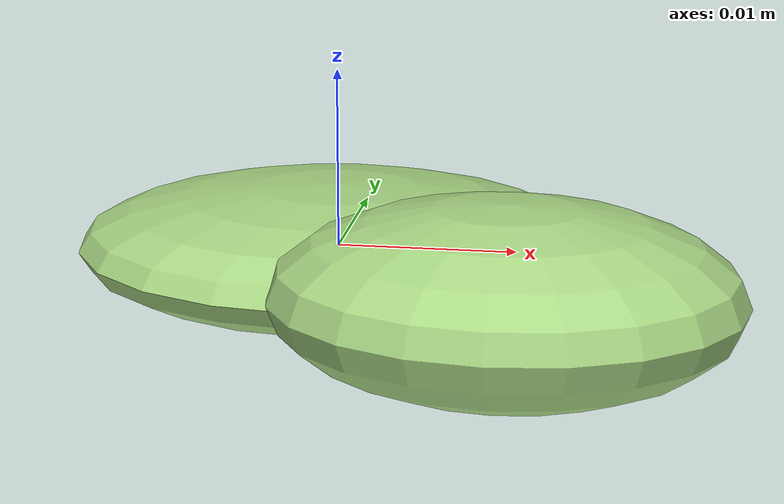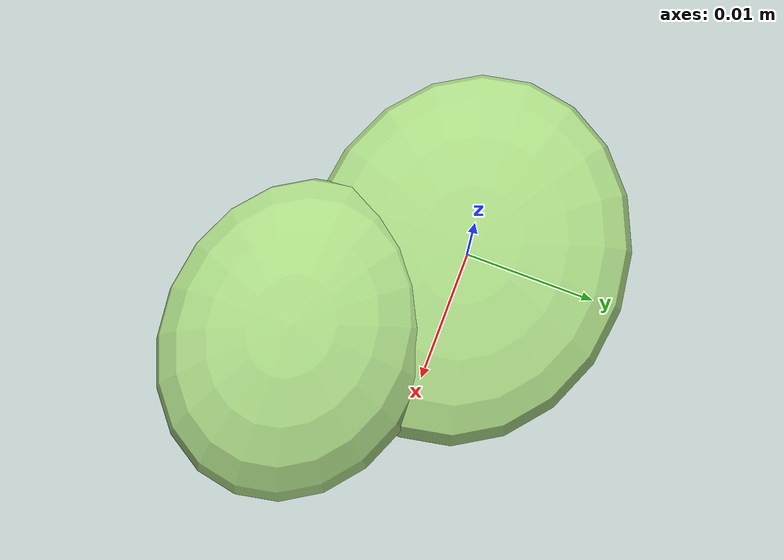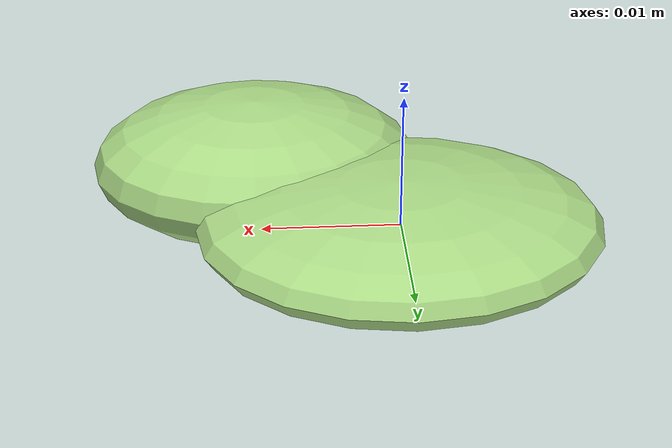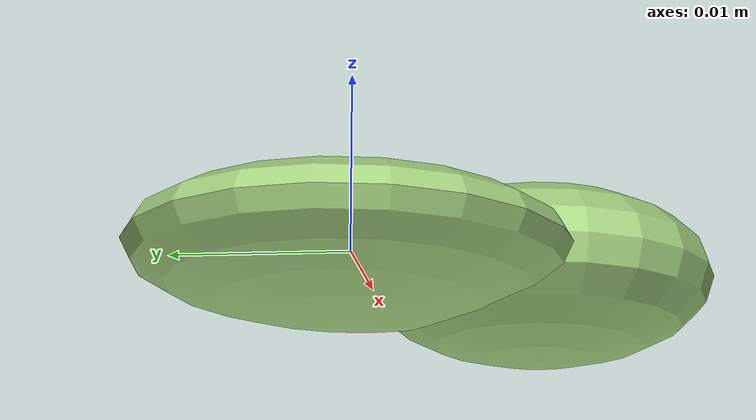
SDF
<?xml version="1.0" ?>
<!-- |    This document was autogenerated by xmacro from data/veggie_template/veggie_base.sdf.xacro  | -->
<!-- |    EDITING THIS FILE BY HAND IS NOT RECOMMENDED                                               | -->
<sdf version="1.8">
	<!-- Parameters -->
	<!-- Base -->
	<!-- Joint 0 -->
	<!-- Link 1 -->
	<!-- Joint 1 -->
	<!-- Link 2 -->
	<!-- Primitives -->
	<!-- All dimensions are half -->
	<!-- Object -->
	<model name="veggie">
		<!-- link0 -->
		<link name="link0">
			<inertial>
				<mass>0.002646832147553751</mass>
				<inertia>
					<ixx>8.62257933218305e-08</ixx>
					<ixy>0</ixy>
					<ixz>0</ixz>
					<iyy>1.2045411150479228e-07</iyy>
					<iyz>0</iyz>
					<izz>1.9363462059382036e-07</izz>
				</inertia>
			</inertial>
			<visual name="link0_visual">
				<pose>0 0 0 0 0 0</pose>
				<geometry>
					<ellipsoid>
						<radii>0.01467045727939896 0.012270423380210217 0.0035102138620547617</radii>
					</ellipsoid>
				</geometry>
				<material>
					<ambient>0.659 0.839 0.514 1</ambient>
					<diffuse>0.659 0.839 0.514 1</diffuse>
					<specular>0 0 0 0</specular>
					<emissive>0 0 0 1</emissive>
				</material>
			</visual>
			<collision name="link0_collision">
				<pose>0 0 0 0 0 0 </pose>
				<geometry>
					<ellipsoid>
						<radii>0.01467045727939896 0.012270423380210217 0.0035102138620547617</radii>
					</ellipsoid>
				</geometry>
			</collision>
		</link>
		<!-- link1 -->
		<joint name="joint0" type="fixed">
			<pose relative_to="link0">0.010351890068361558 -0.009730835023320148 0.0004914515095950654 0.0 0.0 0.0</pose>
			<parent>link0</parent>
			<child>link1</child>
		</joint>
		<link name="link1">
			<pose relative_to="joint0">0 0 0 0 0 0</pose>
			<inertial>
				<mass>0.0026302751714860936</mass>
				<inertia>
					<ixx>6.809933501334633e-08</ixx>
					<ixy>0</ixy>
					<ixz>0</ixz>
					<iyy>9.350540073972848e-08</iyy>
					<iyz>0</iyz>
					<izz>1.3580189705295807e-07</izz>
				</inertia>
			</inertial>
			<visual name="link1_visual">
				<pose>0 0 0 0 0 0</pose>
				<geometry>
					<ellipsoid>
						<radii>0.012378347098397554 0.010243438131746113 0.004952256781383416</radii>
					</ellipsoid>
				</geometry>
				<material>
					<ambient>0.659 0.839 0.514 1</ambient>
					<diffuse>0.659 0.839 0.514 1</diffuse>
					<specular>0 0 0 0</specular>
					<emissive>0 0 0 1</emissive>
				</material>
			</visual>
			<collision name="link1_collision">
				<pose>0 0 0 0 0 0 </pose>
				<geometry>
					<ellipsoid>
						<radii>0.012378347098397554 0.010243438131746113 0.004952256781383416</radii>
					</ellipsoid>
				</geometry>
			</collision>
		</link>
		<!-- link2 -->
	</model>
</sdf>
